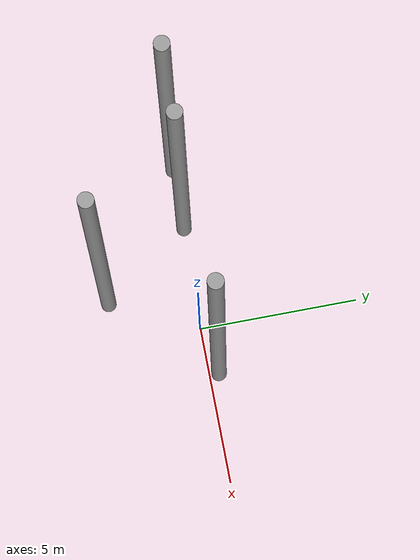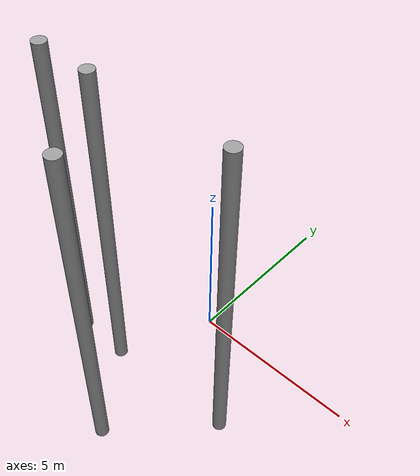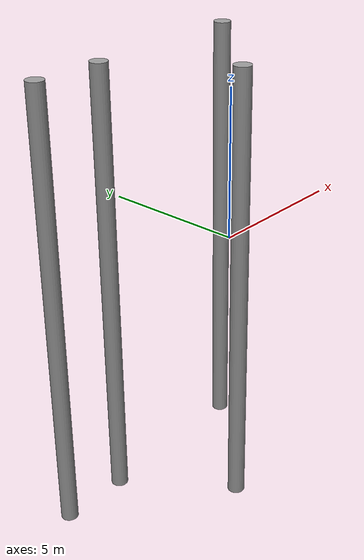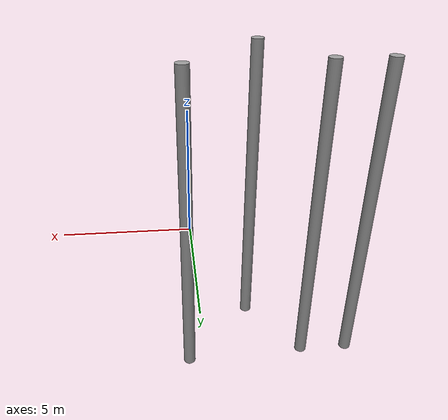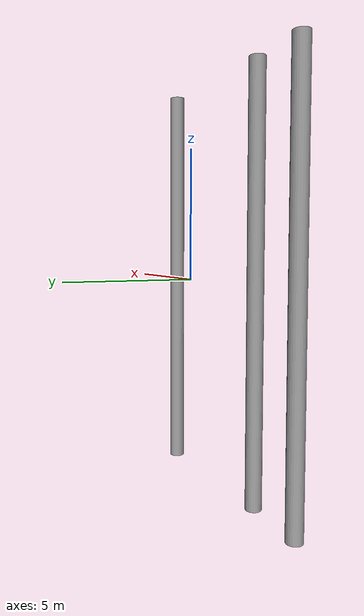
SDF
<?xml version='1.0'?>
<sdf version='1.6'>
  <model name='unit_cylinder'>
    <link name='link'>
      <inertial>
        <mass>3.66041</mass>
        <inertia>
          <ixx>57.4771</ixx>
          <ixy>0</ixy>
          <ixz>0</ixz>
          <iyy>57.4771</iyy>
          <iyz>0</iyz>
          <izz>0.1221</izz>
        </inertia>
        <pose frame=''>0 0 0 0 -0 0</pose>
      </inertial>
      <self_collide>0</self_collide>
      <enable_wind>0</enable_wind>
      <kinematic>0</kinematic>
      <pose frame=''>0.172494 0.509231 -0 0 -0 0</pose>
      <visual name='visual'>
        <geometry>
          <cylinder>
            <radius>0.25829</radius>
            <length>13.7196</length>
          </cylinder>
        </geometry>
        <material>
          <script>
            <name>Gazebo/Grey</name>
            <uri>file://media/materials/scripts/gazebo.material</uri>
          </script>
        </material>
        <pose frame=''>0 0 0 0 -0 0</pose>
        <transparency>0</transparency>
        <cast_shadows>1</cast_shadows>
      </visual>
      <collision name='collision'>
        <laser_retro>0</laser_retro>
        <max_contacts>10</max_contacts>
        <pose frame=''>0 0 0 0 -0 0</pose>
        <geometry>
          <cylinder>
            <radius>0.25829</radius>
            <length>13.7196</length>
          </cylinder>
        </geometry>
        <surface>
          <friction>
            <ode>
              <mu>1</mu>
              <mu2>1</mu2>
              <fdir1>0 0 0</fdir1>
              <slip1>0</slip1>
              <slip2>0</slip2>
            </ode>
            <torsional>
              <coefficient>1</coefficient>
              <patch_radius>0</patch_radius>
              <surface_radius>0</surface_radius>
              <use_patch_radius>1</use_patch_radius>
              <ode>
                <slip>0</slip>
              </ode>
            </torsional>
          </friction>
          <bounce>
            <restitution_coefficient>0</restitution_coefficient>
            <threshold>1e+06</threshold>
          </bounce>
          <contact>
            <collide_without_contact>0</collide_without_contact>
            <collide_without_contact_bitmask>1</collide_without_contact_bitmask>
            <collide_bitmask>1</collide_bitmask>
            <ode>
              <soft_cfm>0</soft_cfm>
              <soft_erp>0.2</soft_erp>
              <kp>1e+13</kp>
              <kd>1</kd>
              <max_vel>0.01</max_vel>
              <min_depth>0</min_depth>
            </ode>
            <bullet>
              <split_impulse>1</split_impulse>
              <split_impulse_penetration_threshold>-0.01</split_impulse_penetration_threshold>
              <soft_cfm>0</soft_cfm>
              <soft_erp>0.2</soft_erp>
              <kp>1e+13</kp>
              <kd>1</kd>
            </bullet>
          </contact>
        </surface>
      </collision>
    </link>
    <link name='link_clone'>
      <inertial>
        <mass>3.66041</mass>
        <inertia>
          <ixx>57.4771</ixx>
          <ixy>0</ixy>
          <ixz>0</ixz>
          <iyy>57.4771</iyy>
          <iyz>0</iyz>
          <izz>0.1221</izz>
        </inertia>
        <pose frame=''>0 0 0 0 -0 0</pose>
      </inertial>
      <self_collide>0</self_collide>
      <enable_wind>0</enable_wind>
      <kinematic>0</kinematic>
      <pose frame=''>-7.22759 0.282099 -1e-06 0 -0 2e-06</pose>
      <visual name='visual'>
        <geometry>
          <cylinder>
            <radius>0.25829</radius>
            <length>13.7196</length>
          </cylinder>
        </geometry>
        <material>
          <script>
            <name>Gazebo/Grey</name>
            <uri>file://media/materials/scripts/gazebo.material</uri>
          </script>
          <shader type='pixel'/>
          <emissive>0 0 0 1</emissive>
        </material>
        <pose frame=''>0 0 0 0 -0 0</pose>
        <transparency>0</transparency>
        <cast_shadows>1</cast_shadows>
      </visual>
      <collision name='collision'>
        <laser_retro>0</laser_retro>
        <max_contacts>10</max_contacts>
        <pose frame=''>0 0 0 0 -0 0</pose>
        <geometry>
          <cylinder>
            <radius>0.25829</radius>
            <length>13.7196</length>
          </cylinder>
        </geometry>
        <surface>
          <friction>
            <ode>
              <mu>1</mu>
              <mu2>1</mu2>
              <fdir1>0 0 0</fdir1>
              <slip1>0</slip1>
              <slip2>0</slip2>
            </ode>
            <torsional>
              <coefficient>1</coefficient>
              <patch_radius>0</patch_radius>
              <surface_radius>0</surface_radius>
              <use_patch_radius>1</use_patch_radius>
              <ode>
                <slip>0</slip>
              </ode>
            </torsional>
          </friction>
          <bounce>
            <restitution_coefficient>0</restitution_coefficient>
            <threshold>1e+06</threshold>
          </bounce>
          <contact>
            <collide_without_contact>0</collide_without_contact>
            <collide_without_contact_bitmask>1</collide_without_contact_bitmask>
            <collide_bitmask>1</collide_bitmask>
            <ode>
              <soft_cfm>0</soft_cfm>
              <soft_erp>0.2</soft_erp>
              <kp>1e+13</kp>
              <kd>1</kd>
              <max_vel>0.01</max_vel>
              <min_depth>0</min_depth>
            </ode>
            <bullet>
              <split_impulse>1</split_impulse>
              <split_impulse_penetration_threshold>-0.01</split_impulse_penetration_threshold>
              <soft_cfm>0</soft_cfm>
              <soft_erp>0.2</soft_erp>
              <kp>1e+13</kp>
              <kd>1</kd>
            </bullet>
          </contact>
        </surface>
      </collision>
    </link>
    <link name='link_clone_0'>
      <inertial>
        <mass>3.66041</mass>
        <inertia>
          <ixx>57.4771</ixx>
          <ixy>0</ixy>
          <ixz>0</ixz>
          <iyy>57.4771</iyy>
          <iyz>0</iyz>
          <izz>0.1221</izz>
        </inertia>
        <pose frame=''>0 0 0 0 -0 0</pose>
      </inertial>
      <self_collide>0</self_collide>
      <enable_wind>0</enable_wind>
      <kinematic>0</kinematic>
      <pose frame=''>-2.92052 -2.76392 1e-06 0 -0 2e-06</pose>
      <visual name='visual'>
        <geometry>
          <cylinder>
            <radius>0.25829</radius>
            <length>13.7196</length>
          </cylinder>
        </geometry>
        <material>
          <script>
            <name>Gazebo/Grey</name>
            <uri>file://media/materials/scripts/gazebo.material</uri>
          </script>
          <shader type='pixel'/>
        </material>
        <pose frame=''>0 0 0 0 -0 0</pose>
        <transparency>0</transparency>
        <cast_shadows>1</cast_shadows>
      </visual>
      <collision name='collision'>
        <laser_retro>0</laser_retro>
        <max_contacts>10</max_contacts>
        <pose frame=''>0 0 0 0 -0 0</pose>
        <geometry>
          <cylinder>
            <radius>0.25829</radius>
            <length>13.7196</length>
          </cylinder>
        </geometry>
        <surface>
          <friction>
            <ode>
              <mu>1</mu>
              <mu2>1</mu2>
              <fdir1>0 0 0</fdir1>
              <slip1>0</slip1>
              <slip2>0</slip2>
            </ode>
            <torsional>
              <coefficient>1</coefficient>
              <patch_radius>0</patch_radius>
              <surface_radius>0</surface_radius>
              <use_patch_radius>1</use_patch_radius>
              <ode>
                <slip>0</slip>
              </ode>
            </torsional>
          </friction>
          <bounce>
            <restitution_coefficient>0</restitution_coefficient>
            <threshold>1e+06</threshold>
          </bounce>
          <contact>
            <collide_without_contact>0</collide_without_contact>
            <collide_without_contact_bitmask>1</collide_without_contact_bitmask>
            <collide_bitmask>1</collide_bitmask>
            <ode>
              <soft_cfm>0</soft_cfm>
              <soft_erp>0.2</soft_erp>
              <kp>1e+13</kp>
              <kd>1</kd>
              <max_vel>0.01</max_vel>
              <min_depth>0</min_depth>
            </ode>
            <bullet>
              <split_impulse>1</split_impulse>
              <split_impulse_penetration_threshold>-0.01</split_impulse_penetration_threshold>
              <soft_cfm>0</soft_cfm>
              <soft_erp>0.2</soft_erp>
              <kp>1e+13</kp>
              <kd>1</kd>
            </bullet>
          </contact>
        </surface>
      </collision>
    </link>
    <link name='link_clone_1'>
      <inertial>
        <mass>3.66041</mass>
        <inertia>
          <ixx>57.4771</ixx>
          <ixy>0</ixy>
          <ixz>0</ixz>
          <iyy>57.4771</iyy>
          <iyz>0</iyz>
          <izz>0.1221</izz>
        </inertia>
        <pose frame=''>0 0 0 0 -0 0</pose>
      </inertial>
      <self_collide>0</self_collide>
      <enable_wind>0</enable_wind>
      <kinematic>0</kinematic>
      <pose frame=''>-5.08312 0.270509 -1e-06 0 -0 2e-06</pose>
      <visual name='visual'>
        <geometry>
          <cylinder>
            <radius>0.25829</radius>
            <length>13.7196</length>
          </cylinder>
        </geometry>
        <material>
          <script>
            <name>Gazebo/Grey</name>
            <uri>file://media/materials/scripts/gazebo.material</uri>
          </script>
          <shader type='pixel'/>
        </material>
        <pose frame=''>0 0 0 0 -0 0</pose>
        <transparency>0</transparency>
        <cast_shadows>1</cast_shadows>
      </visual>
      <collision name='collision'>
        <laser_retro>0</laser_retro>
        <max_contacts>10</max_contacts>
        <pose frame=''>0 0 0 0 -0 0</pose>
        <geometry>
          <cylinder>
            <radius>0.25829</radius>
            <length>13.7196</length>
          </cylinder>
        </geometry>
        <surface>
          <friction>
            <ode>
              <mu>1</mu>
              <mu2>1</mu2>
              <fdir1>0 0 0</fdir1>
              <slip1>0</slip1>
              <slip2>0</slip2>
            </ode>
            <torsional>
              <coefficient>1</coefficient>
              <patch_radius>0</patch_radius>
              <surface_radius>0</surface_radius>
              <use_patch_radius>1</use_patch_radius>
              <ode>
                <slip>0</slip>
              </ode>
            </torsional>
          </friction>
          <bounce>
            <restitution_coefficient>0</restitution_coefficient>
            <threshold>1e+06</threshold>
          </bounce>
          <contact>
            <collide_without_contact>0</collide_without_contact>
            <collide_without_contact_bitmask>1</collide_without_contact_bitmask>
            <collide_bitmask>1</collide_bitmask>
            <ode>
              <soft_cfm>0</soft_cfm>
              <soft_erp>0.2</soft_erp>
              <kp>1e+13</kp>
              <kd>1</kd>
              <max_vel>0.01</max_vel>
              <min_depth>0</min_depth>
            </ode>
            <bullet>
              <split_impulse>1</split_impulse>
              <split_impulse_penetration_threshold>-0.01</split_impulse_penetration_threshold>
              <soft_cfm>0</soft_cfm>
              <soft_erp>0.2</soft_erp>
              <kp>1e+13</kp>
              <kd>1</kd>
            </bullet>
          </contact>
        </surface>
      </collision>
    </link>
    <static>0</static>
    <allow_auto_disable>1</allow_auto_disable>
  </model>
</sdf>
